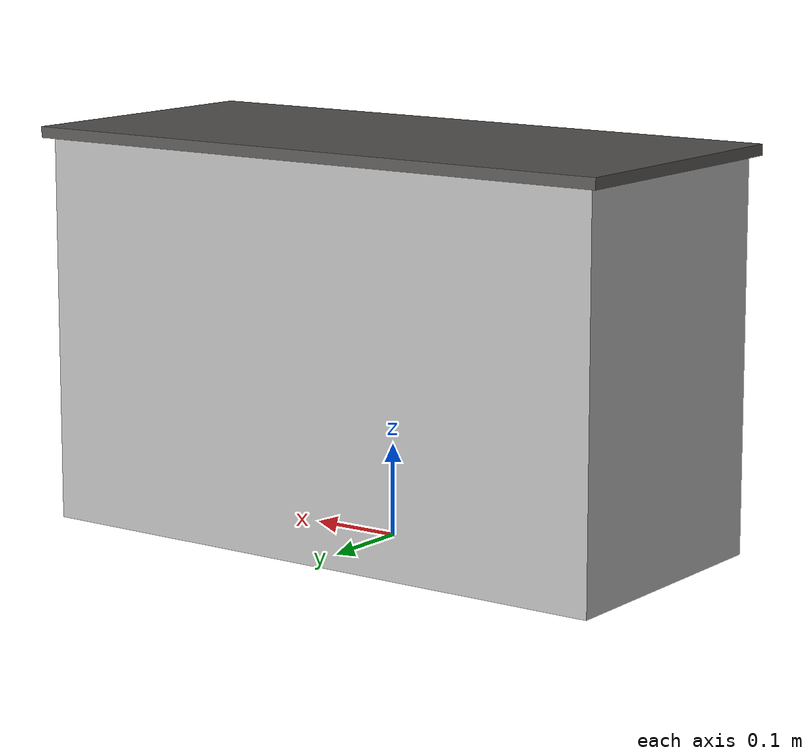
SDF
<?xml version="1.0"?>
<sdf version="1.7">
  <model name="bldg_d">
    <static>true</static>
    <link name="link">
<visual name="mass"><pose>0 0 0.2100 0 0 0</pose><geometry><box><size>0.680 0.300 0.420</size></box></geometry><material><script><uri>model://bldg_d/materials/scripts</uri><uri>model://bldg_d/materials/textures</uri><name>BldgFacade</name></script></material></visual>
      <collision name="mass_c_c"><pose>0 0 0.2100 0 0 0</pose><geometry><box><size>0.680 0.300 0.420</size></box></geometry></collision>
      <visual name="roof"><pose>0 0 0.4260 0 0 0</pose><geometry><box><size>0.700 0.320 0.012</size></box></geometry><material><ambient>0.35 0.34 0.33 1</ambient><diffuse>0.35 0.34 0.33 1</diffuse></material></visual>
      <visual name="door"><pose>0 -0.1520 0.0280 0 0 0</pose><geometry><box><size>0.035 0.004 0.055</size></box></geometry><material><ambient>0.25 0.22 0.20 1</ambient><diffuse>0.25 0.22 0.20 1</diffuse></material></visual>
    </link>
  </model>
</sdf>
